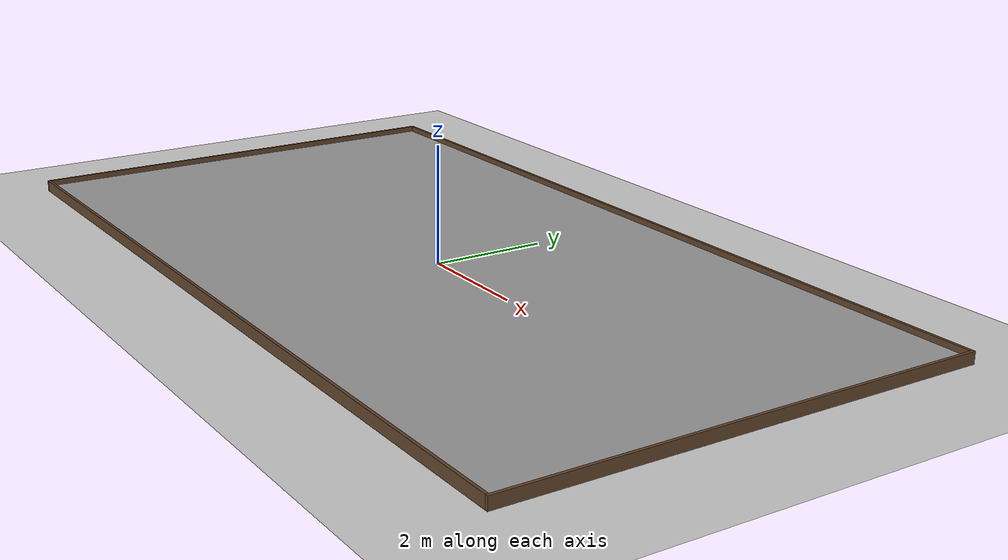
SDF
<sdf version="1.7">
 <world name="default">
  <light name="sun" type="directional">
   <pose>0 0 10 0 -0 0</pose>
   <diffuse>0.8 0.8 0.8 1</diffuse>
   <specular>0.2 0.2 0.2 1</specular>
   <attenuation>
    <range>1000</range>
    <constant>0.9</constant>
    <linear>0.01</linear>
    <quadratic>0.001</quadratic>
   </attenuation>
   <direction>-0.5 0.1 -0.9</direction>
   <spot><inner_angle>0</inner_angle><outer_angle>0</outer_angle><falloff>0</falloff></spot>
  </light>
  <model name="ground_plane">
   <static>1</static>
   <link name="link">
    <collision name="collision">
     <geometry><plane><normal>0 0 1</normal><size>100 100</size></plane></geometry>
     <surface>
      <contact><collide_bitmask>65535</collide_bitmask></contact>
      <friction><ode><mu>100</mu><mu2>50</mu2></ode></friction>
     </surface>
    </collision>
    <visual name="visual">
     <cast_shadows>0</cast_shadows>
     <geometry><plane><normal>0 0 1</normal><size>100 100</size></plane></geometry>
     <material>
      <script><uri>file://media/materials/scripts/gazebo.material</uri><name>Gazebo/Grey</name></script>
     </material>
    </visual>
   </link>
  </model>
  <gravity>0 0 -9.8</gravity>
  <magnetic_field>6e-06 2.3e-05 -4.2e-05</magnetic_field>
  <atmosphere type="adiabatic"/>
  <physics type="ode">
   <max_step_size>0.001</max_step_size>
   <real_time_factor>1</real_time_factor>
   <real_time_update_rate>1000</real_time_update_rate>
  </physics>
  <scene><ambient>0.4 0.4 0.4 1</ambient><background>0.7 0.7 0.8 1</background><shadows>0</shadows></scene>
  <audio><device>default</device></audio>
  <spherical_coordinates>
   <surface_model>EARTH_WGS84</surface_model>
   <latitude_deg>0</latitude_deg>
   <longitude_deg>0</longitude_deg>
   <elevation>0</elevation>
   <heading_deg>0</heading_deg>
  </spherical_coordinates>
  <model name="arena_floor">
   <link name="link">
    <pose>0 0 0.05 0 -0 0</pose>
    <inertial>
     <mass>1</mass>
     <inertia><ixx>1</ixx><ixy>0</ixy><ixz>0</ixz><iyy>1</iyy><iyz>0</iyz><izz>1</izz></inertia>
    </inertial>
    <visual name="visual">
     <geometry><box><size>15 8 0.1</size></box></geometry>
     <material>
      <script><name>Gazebo/Grey</name><uri>file://media/materials/scripts/gazebo.material</uri></script>
      <shader type="pixel"><normal_map>__default__</normal_map></shader>
      <ambient>0.2 0.2 0.2 1</ambient>
      <diffuse>0.784 0.784 0.784 1</diffuse>
      <specular>0.01 0.01 0.01 0.05</specular>
      <emissive>0 0 0 0.001</emissive>
     </material>
    </visual>
    <collision name="collision">
     <geometry><box><size>15 8 0.1</size></box></geometry>
     <surface>
      <friction>
       <ode><mu>1</mu><mu2>1</mu2><fdir1>0 0 0</fdir1><slip1>0</slip1><slip2>0</slip2></ode>
       <torsional>
        <coefficient>1</coefficient>
        <patch_radius>0</patch_radius>
        <surface_radius>0</surface_radius>
        <use_patch_radius>1</use_patch_radius>
        <ode><slip>0</slip></ode>
       </torsional>
      </friction>
      <bounce><restitution_coefficient>0</restitution_coefficient><threshold>1e+06</threshold></bounce>
      <contact>
       <collide_without_contact>0</collide_without_contact>
       <collide_without_contact_bitmask>1</collide_without_contact_bitmask>
       <collide_bitmask>1</collide_bitmask>
       <ode>
        <soft_cfm>0</soft_cfm>
        <soft_erp>0.2</soft_erp>
        <kp>1e+13</kp>
        <kd>1</kd>
        <max_vel>0.01</max_vel>
        <min_depth>0</min_depth>
       </ode>
       <bullet>
        <split_impulse>1</split_impulse>
        <split_impulse_penetration_threshold>-0.01</split_impulse_penetration_threshold>
        <soft_cfm>0</soft_cfm>
        <soft_erp>0.2</soft_erp>
        <kp>1e+13</kp>
        <kd>1</kd>
       </bullet>
      </contact>
     </surface>
    </collision>
   </link>
   <static>1</static>
  </model>
  <model name="arena_wall">
   <link name="link">
    <inertial>
     <mass>1</mass>
     <inertia>
      <ixx>0.166667</ixx>
      <ixy>0</ixy>
      <ixz>0</ixz>
      <iyy>0.166667</iyy>
      <iyz>0</iyz>
      <izz>0.166667</izz>
     </inertia>
    </inertial>
    <pose>0 4.025 0.1 0 -0 0</pose>
    <visual name="visual">
     <geometry><box><size>15 0.05 0.2</size></box></geometry>
     <material>
      <script><name>Gazebo/Grey</name><uri>file://media/materials/scripts/gazebo.material</uri></script>
      <shader type="pixel"><normal_map>__default__</normal_map></shader>
      <ambient>0.71 0.514 0.353 1</ambient>
      <diffuse>0.388 0.271 0.173 1</diffuse>
      <specular>0.01 0.01 0.01 0.01</specular>
      <emissive>0 0 0 0.001</emissive>
     </material>
    </visual>
    <collision name="collision">
     <geometry><box><size>15 0.05 0.2</size></box></geometry>
     <surface>
      <friction>
       <ode><mu>1</mu><mu2>1</mu2><fdir1>0 0 0</fdir1><slip1>0</slip1><slip2>0</slip2></ode>
       <torsional>
        <coefficient>1</coefficient>
        <patch_radius>0</patch_radius>
        <surface_radius>0</surface_radius>
        <use_patch_radius>1</use_patch_radius>
        <ode><slip>0</slip></ode>
       </torsional>
      </friction>
      <bounce><restitution_coefficient>0</restitution_coefficient><threshold>1e+06</threshold></bounce>
      <contact>
       <collide_without_contact>0</collide_without_contact>
       <collide_without_contact_bitmask>1</collide_without_contact_bitmask>
       <collide_bitmask>1</collide_bitmask>
       <ode>
        <soft_cfm>0</soft_cfm>
        <soft_erp>0.2</soft_erp>
        <kp>1e+13</kp>
        <kd>1</kd>
        <max_vel>0.01</max_vel>
        <min_depth>0</min_depth>
       </ode>
       <bullet>
        <split_impulse>1</split_impulse>
        <split_impulse_penetration_threshold>-0.01</split_impulse_penetration_threshold>
        <soft_cfm>0</soft_cfm>
        <soft_erp>0.2</soft_erp>
        <kp>1e+13</kp>
        <kd>1</kd>
       </bullet>
      </contact>
     </surface>
    </collision>
   </link>
   <link name="link_1">
    <inertial>
     <mass>1</mass>
     <inertia>
      <ixx>0.166667</ixx>
      <ixy>0</ixy>
      <ixz>0</ixz>
      <iyy>0.166667</iyy>
      <iyz>0</iyz>
      <izz>0.166667</izz>
     </inertia>
    </inertial>
    <pose>0 -4.025 0.1 0 -0 0</pose>
    <visual name="visual">
     <geometry><box><size>15 0.05 0.2</size></box></geometry>
     <material>
      <lighting>1</lighting>
      <script><uri>file://media/materials/scripts/gazebo.material</uri><name>Gazebo/Grey</name></script>
      <shader type="pixel"><normal_map>__default__</normal_map></shader>
      <ambient>0.71 0.514 0.353 1</ambient>
      <diffuse>0.388 0.271 0.173 1</diffuse>
      <specular>0.01 0.01 0.01 0.01</specular>
      <emissive>0 0 0 0.001</emissive>
     </material>
    </visual>
    <collision name="collision">
     <geometry><box><size>15 0.05 0.2</size></box></geometry>
     <surface>
      <friction>
       <ode><mu>1</mu><mu2>1</mu2><fdir1>0 0 0</fdir1><slip1>0</slip1><slip2>0</slip2></ode>
       <torsional>
        <coefficient>1</coefficient>
        <patch_radius>0</patch_radius>
        <surface_radius>0</surface_radius>
        <use_patch_radius>1</use_patch_radius>
        <ode><slip>0</slip></ode>
       </torsional>
      </friction>
      <bounce><restitution_coefficient>0</restitution_coefficient><threshold>1e+06</threshold></bounce>
      <contact>
       <collide_without_contact>0</collide_without_contact>
       <collide_without_contact_bitmask>1</collide_without_contact_bitmask>
       <collide_bitmask>1</collide_bitmask>
       <ode>
        <soft_cfm>0</soft_cfm>
        <soft_erp>0.2</soft_erp>
        <kp>1e+13</kp>
        <kd>1</kd>
        <max_vel>0.01</max_vel>
        <min_depth>0</min_depth>
       </ode>
       <bullet>
        <split_impulse>1</split_impulse>
        <split_impulse_penetration_threshold>-0.01</split_impulse_penetration_threshold>
        <soft_cfm>0</soft_cfm>
        <soft_erp>0.2</soft_erp>
        <kp>1e+13</kp>
        <kd>1</kd>
       </bullet>
      </contact>
     </surface>
    </collision>
   </link>
   <link name="link_2">
    <inertial>
     <mass>1</mass>
     <inertia>
      <ixx>0.166667</ixx>
      <ixy>0</ixy>
      <ixz>0</ixz>
      <iyy>0.166667</iyy>
      <iyz>0</iyz>
      <izz>0.166667</izz>
     </inertia>
    </inertial>
    <pose>-7.525 0 0.1 0 -0 0</pose>
    <visual name="visual">
     <geometry><box><size>0.05 8.1 0.2</size></box></geometry>
     <material>
      <lighting>1</lighting>
      <script><uri>file://media/materials/scripts/gazebo.material</uri><name>Gazebo/Grey</name></script>
      <shader type="pixel"><normal_map>__default__</normal_map></shader>
      <ambient>0.71 0.514 0.353 1</ambient>
      <diffuse>0.388 0.271 0.173 1</diffuse>
      <specular>0.01 0.01 0.01 0.01</specular>
      <emissive>0 0 0 0.001</emissive>
     </material>
    </visual>
    <collision name="collision">
     <geometry><box><size>0.05 8.1 0.2</size></box></geometry>
     <surface>
      <friction>
       <ode><mu>1</mu><mu2>1</mu2><fdir1>0 0 0</fdir1><slip1>0</slip1><slip2>0</slip2></ode>
       <torsional>
        <coefficient>1</coefficient>
        <patch_radius>0</patch_radius>
        <surface_radius>0</surface_radius>
        <use_patch_radius>1</use_patch_radius>
        <ode><slip>0</slip></ode>
       </torsional>
      </friction>
      <bounce><restitution_coefficient>0</restitution_coefficient><threshold>1e+06</threshold></bounce>
      <contact>
       <collide_without_contact>0</collide_without_contact>
       <collide_without_contact_bitmask>1</collide_without_contact_bitmask>
       <collide_bitmask>1</collide_bitmask>
       <ode>
        <soft_cfm>0</soft_cfm>
        <soft_erp>0.2</soft_erp>
        <kp>1e+13</kp>
        <kd>1</kd>
        <max_vel>0.01</max_vel>
        <min_depth>0</min_depth>
       </ode>
       <bullet>
        <split_impulse>1</split_impulse>
        <split_impulse_penetration_threshold>-0.01</split_impulse_penetration_threshold>
        <soft_cfm>0</soft_cfm>
        <soft_erp>0.2</soft_erp>
        <kp>1e+13</kp>
        <kd>1</kd>
       </bullet>
      </contact>
     </surface>
    </collision>
   </link>
   <link name="link_3">
    <inertial>
     <mass>1</mass>
     <inertia>
      <ixx>0.166667</ixx>
      <ixy>0</ixy>
      <ixz>0</ixz>
      <iyy>0.166667</iyy>
      <iyz>0</iyz>
      <izz>0.166667</izz>
     </inertia>
    </inertial>
    <pose>7.525 0 0.1 0 -0 0</pose>
    <visual name="visual">
     <geometry><box><size>0.05 8.1 0.2</size></box></geometry>
     <material>
      <lighting>1</lighting>
      <script><uri>file://media/materials/scripts/gazebo.material</uri><name>Gazebo/Grey</name></script>
      <shader type="pixel"><normal_map>__default__</normal_map></shader>
      <ambient>0.71 0.514 0.353 1</ambient>
      <diffuse>0.388 0.271 0.173 1</diffuse>
      <specular>0.01 0.01 0.01 0.01</specular>
      <emissive>0 0 0 0.001</emissive>
     </material>
    </visual>
    <collision name="collision">
     <geometry><box><size>0.05 8.1 0.2</size></box></geometry>
     <surface>
      <friction>
       <ode><mu>1</mu><mu2>1</mu2><fdir1>0 0 0</fdir1><slip1>0</slip1><slip2>0</slip2></ode>
       <torsional>
        <coefficient>1</coefficient>
        <patch_radius>0</patch_radius>
        <surface_radius>0</surface_radius>
        <use_patch_radius>1</use_patch_radius>
        <ode><slip>0</slip></ode>
       </torsional>
      </friction>
      <bounce><restitution_coefficient>0</restitution_coefficient><threshold>1e+06</threshold></bounce>
      <contact>
       <collide_without_contact>0</collide_without_contact>
       <collide_without_contact_bitmask>1</collide_without_contact_bitmask>
       <collide_bitmask>1</collide_bitmask>
       <ode>
        <soft_cfm>0</soft_cfm>
        <soft_erp>0.2</soft_erp>
        <kp>1e+13</kp>
        <kd>1</kd>
        <max_vel>0.01</max_vel>
        <min_depth>0</min_depth>
       </ode>
       <bullet>
        <split_impulse>1</split_impulse>
        <split_impulse_penetration_threshold>-0.01</split_impulse_penetration_threshold>
        <soft_cfm>0</soft_cfm>
        <soft_erp>0.2</soft_erp>
        <kp>1e+13</kp>
        <kd>1</kd>
       </bullet>
      </contact>
     </surface>
    </collision>
   </link>
   <static>1</static>
  </model>
 </world>
</sdf>
